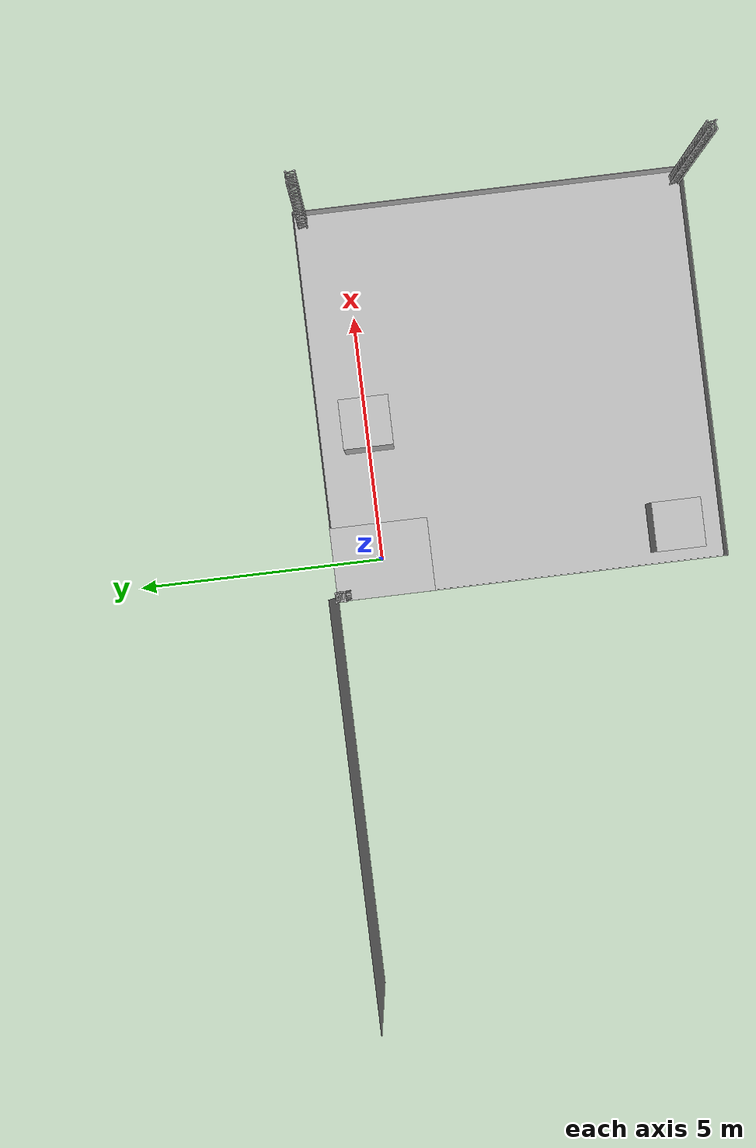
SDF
<?xml version="1.0" ?>
<sdf version="1.9">
  <world name="default">
    <plugin filename="gz-sim-physics-system" name="gz::sim::systems::Physics"/>
    <plugin filename="gz-sim-user-commands-system" name="gz::sim::systems::UserCommands"/>
    <plugin filename="gz-sim-scene-broadcaster-system" name="gz::sim::systems::SceneBroadcaster"/>
    <plugin filename="gz-sim-sensors-system" name="gz::sim::systems::Sensors">
      <render_engine>ogre2</render_engine>
    </plugin>

    <physics name="4ms" type="ignored">
      <max_step_size>0.004</max_step_size>
      <real_time_update_rate>250</real_time_update_rate>
    </physics>

    <scene>
      <ambient>1.0 1.0 1.0 1.0</ambient>
      <background>0.7 0.7 0.7 1.0</background>
      <shadows>false</shadows>
    </scene>

    <light type="directional" name="sun">
      <cast_shadows>false</cast_shadows> <pose>250 250 600 0 0 0</pose>
      <diffuse>0.8 0.8 0.8 1</diffuse>
      <specular>0.2 0.2 0.2 </specular>
      <direction>0 0 -1</direction>
    </light>

    <gui fullscreen="0">
      <camera name="user_camera">
        <pose>15 2 10 0 0.6 -2.64</pose>
      </camera>
    </gui>

    <model name="ground_plane">
      <static>true</static>
      <link name="link">
        <collision name="collision">
          <geometry>
            <plane>
              <normal>0 0 1</normal>
              <size>250 250</size>
            </plane>
          </geometry>
        </collision>
        <visual name="visual">
          <geometry>
            <plane>
              <normal>0 0 1</normal>
              <size>250 250</size>
            </plane>
          </geometry>
          <material>
            <ambient>0.3 0.5 0.3 1</ambient>
            <diffuse>0.3 0.5 0.3 1</diffuse>
          </material>
        </visual>
      </link>
    </model>

    <include>
      <name>arena</name>
      <uri>model://arena_spawn</uri>
      <pose>-0.75 -7.0 0.001 0 0 0</pose>
    </include>

    <include>
      <name>takeoff_platform</name>
      <uri>model://takeoff_platform</uri>
      <pose>0 0 0 0 0 0</pose>
    </include>

    <include>
      <name>banner</name>
      <uri>model://banner</uri>
      <pose>-0.75 -6.9 0 0 0 0</pose>
    </include>

    <include>
      <name>banner_2</name>
      <uri>model://banner_2</uri>
      <pose>-0.65 1.0 0.05 0 0 -1.57</pose>
    </include>

    <include>
      <name>landing_platform_A</name>
      <uri>model://suspended_landing_platform</uri>
      <pose>2.75 0.0 1.50 0 0 0</pose>
    </include>

    <include>
      <name>landing_platform_E</name>
      <uri>model://suspended_landing_platform</uri>
      <pose>0.0 -6.0 1.0 0 0 0</pose>
    </include>

  </world>
</sdf>

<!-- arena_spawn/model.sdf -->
<sdf version='1.6'>
  <model name='arena_spawn'>
    <link name='link_arena'>
      <inertial>
        <mass>15</mass>
        <inertia>
          <ixx>1</ixx>
          <ixy>1</ixy>
          <ixz>1</ixz>
          <iyy>1</iyy>
          <iyz>1</iyz>
          <izz>1</izz>
        </inertia>
      </inertial>
      <self_collide>1</self_collide>
      <enable_wind>0</enable_wind>
      <kinematic>0</kinematic>
      <pose frame=''>0 0 0 0 -0 0</pose>
      <visual name='visual'>
        <pose frame=''>0 0 0 0 -0 0</pose>
        <geometry>
          <mesh>
            <uri>model://arena_spawn/meshes/Arena.obj</uri>
            <scale>1 1 1</scale>
          </mesh>
        </geometry>
        <transparency>0</transparency>
        <cast_shadows>1</cast_shadows>
      </visual>
      <collision name='collision'>
        <laser_retro>0</laser_retro>
        <max_contacts>10</max_contacts>
        <pose frame=''>0 0 0 0 -0 0</pose>
        <geometry>
          <mesh>
            <uri>model://arena_spawn/meshes/Arena.obj</uri>
            <scale>1 1 1</scale>
          </mesh>
        </geometry>
        <surface>
          <friction>
            <ode>
              <mu>1</mu>
              <mu2>1</mu2>
              <fdir1>0 0 0</fdir1>
              <slip1>0</slip1>
              <slip2>0</slip2>
            </ode>
            <torsional>
              <coefficient>1</coefficient>
              <patch_radius>100</patch_radius>
              <surface_radius>100</surface_radius>
              <use_patch_radius>1</use_patch_radius>
              <ode>
                <slip>0</slip>
              </ode>
            </torsional>
          </friction>
          <bounce>
            <restitution_coefficient>0</restitution_coefficient>
            <threshold>1e+06</threshold>
          </bounce>
          <contact>
            <collide_without_contact>0</collide_without_contact>
            <collide_without_contact_bitmask>1</collide_without_contact_bitmask>
            <collide_bitmask>1</collide_bitmask>
            <ode>
              <soft_cfm>0</soft_cfm>
              <soft_erp>0.2</soft_erp>
              <kp>1e+13</kp>
              <kd>1</kd>
              <max_vel>0.01</max_vel>
              <min_depth>0</min_depth>
            </ode>
            <bullet>
              <split_impulse>1</split_impulse>
              <split_impulse_penetration_threshold>-0.01</split_impulse_penetration_threshold>
              <soft_cfm>0</soft_cfm>
              <soft_erp>0.2</soft_erp>
              <kp>1e+13</kp>
              <kd>1</kd>
            </bullet>
          </contact>
        </surface>
      </collision>
    </link>
    <link name='pilar_2'>
      <inertial>
        <mass>1</mass>
        <inertia>
          <ixx>0.166667</ixx>
          <ixy>0</ixy>
          <ixz>0</ixz>
          <iyy>0.166667</iyy>
          <iyz>0</iyz>
          <izz>0.166667</izz>
        </inertia>
      </inertial>
      <self_collide>1</self_collide>
      <enable_wind>0</enable_wind>
      <kinematic>0</kinematic>
      <pose frame=''>7.7 0 0 0 -0 0</pose>
      <visual name='visual'>
        <pose frame=''>0 0 0 0 -0 0</pose>
        <geometry>
          <mesh>
            <uri>model://arena_spawn/meshes/pilar.obj</uri>
            <scale>1 1 1</scale>
          </mesh>
        </geometry>
        <transparency>0</transparency>
        <cast_shadows>1</cast_shadows>
      </visual>
      <collision name='collision'>
        <laser_retro>0</laser_retro>
        <max_contacts>10</max_contacts>
        <pose frame=''>0 0 0 0 -0 0</pose>
        <geometry>
          <mesh>
            <uri>model://arena_spawn/meshes/pilar.obj</uri>
            <scale>1 1 1</scale>
          </mesh>
        </geometry>
        <surface>
          <friction>
            <ode>
              <mu>1</mu>
              <mu2>1</mu2>
              <fdir1>0 0 0</fdir1>
              <slip1>0</slip1>
              <slip2>0</slip2>
            </ode>
            <torsional>
              <coefficient>1</coefficient>
              <patch_radius>100</patch_radius>
              <surface_radius>100</surface_radius>
              <use_patch_radius>1</use_patch_radius>
              <ode>
                <slip>0</slip>
              </ode>
            </torsional>
          </friction>
          <bounce>
            <restitution_coefficient>0</restitution_coefficient>
            <threshold>1e+06</threshold>
          </bounce>
          <contact>
            <collide_without_contact>0</collide_without_contact>
            <collide_without_contact_bitmask>1</collide_without_contact_bitmask>
            <collide_bitmask>1</collide_bitmask>
            <ode>
              <soft_cfm>0</soft_cfm>
              <soft_erp>0.2</soft_erp>
              <kp>1e+13</kp>
              <kd>1</kd>
              <max_vel>0.01</max_vel>
              <min_depth>0</min_depth>
            </ode>
            <bullet>
              <split_impulse>1</split_impulse>
              <split_impulse_penetration_threshold>-0.01</split_impulse_penetration_threshold>
              <soft_cfm>0</soft_cfm>
              <soft_erp>0.2</soft_erp>
              <kp>1e+13</kp>
              <kd>1</kd>
            </bullet>
          </contact>
        </surface>
      </collision>
    </link>
    <link name='pilar_3'>
      <inertial>
        <mass>1</mass>
        <inertia>
          <ixx>0.166667</ixx>
          <ixy>0</ixy>
          <ixz>0</ixz>
          <iyy>0.166667</iyy>
          <iyz>0</iyz>
          <izz>0.166667</izz>
        </inertia>
      </inertial>
      <self_collide>1</self_collide>
      <enable_wind>0</enable_wind>
      <kinematic>0</kinematic>
      <pose frame=''>0 7.7 0 0 -0 0</pose>
      <visual name='visual'>
        <pose frame=''>0 0 0 0 -0 0</pose>
        <geometry>
          <mesh>
            <uri>model://arena_spawn/meshes/pilar.obj</uri>
            <scale>1 1 1</scale>
          </mesh>
        </geometry>
        <transparency>0</transparency>
        <cast_shadows>1</cast_shadows>
      </visual>
      <collision name='collision'>
        <laser_retro>0</laser_retro>
        <max_contacts>10</max_contacts>
        <pose frame=''>0 0 0 0 -0 0</pose>
        <geometry>
          <mesh>
            <uri>model://arena_spawn/meshes/pilar.obj</uri>
            <scale>1 1 1</scale>
          </mesh>
        </geometry>
        <surface>
          <friction>
            <ode>
              <mu>1</mu>
              <mu2>1</mu2>
              <fdir1>0 0 0</fdir1>
              <slip1>0</slip1>
              <slip2>0</slip2>
            </ode>
            <torsional>
              <coefficient>1</coefficient>
              <patch_radius>100</patch_radius>
              <surface_radius>100</surface_radius>
              <use_patch_radius>1</use_patch_radius>
              <ode>
                <slip>0</slip>
              </ode>
            </torsional>
          </friction>
          <bounce>
            <restitution_coefficient>0</restitution_coefficient>
            <threshold>1e+06</threshold>
          </bounce>
          <contact>
            <collide_without_contact>0</collide_without_contact>
            <collide_without_contact_bitmask>1</collide_without_contact_bitmask>
            <collide_bitmask>1</collide_bitmask>
            <ode>
              <soft_cfm>0</soft_cfm>
              <soft_erp>0.2</soft_erp>
              <kp>1e+13</kp>
              <kd>1</kd>
              <max_vel>0.01</max_vel>
              <min_depth>0</min_depth>
            </ode>
            <bullet>
              <split_impulse>1</split_impulse>
              <split_impulse_penetration_threshold>-0.01</split_impulse_penetration_threshold>
              <soft_cfm>0</soft_cfm>
              <soft_erp>0.2</soft_erp>
              <kp>1e+13</kp>
              <kd>1</kd>
            </bullet>
          </contact>
        </surface>
      </collision>
    </link>
    <link name='pilar_4'>
      <inertial>
        <mass>1</mass>
        <inertia>
          <ixx>0.166667</ixx>
          <ixy>0</ixy>
          <ixz>0</ixz>
          <iyy>0.166667</iyy>
          <iyz>0</iyz>
          <izz>0.166667</izz>
        </inertia>
      </inertial>
      <self_collide>1</self_collide>
      <enable_wind>0</enable_wind>
      <kinematic>0</kinematic>
      <pose frame=''>7.7 7.7 0 0 -0 0</pose>
      <visual name='visual'>
        <pose frame=''>0 0 0 0 -0 0</pose>
        <geometry>
          <mesh>
            <uri>model://arena_spawn/meshes/pilar.obj</uri>
            <scale>1 1 1</scale>
          </mesh>
        </geometry>
        <transparency>0</transparency>
        <cast_shadows>1</cast_shadows>
      </visual>
      <collision name='collision'>
        <laser_retro>0</laser_retro>
        <max_contacts>10</max_contacts>
        <pose frame=''>0 0 0 0 -0 0</pose>
        <geometry>
          <mesh>
            <uri>model://arena_spawn/meshes/pilar.obj</uri>
            <scale>1 1 1</scale>
          </mesh>
        </geometry>
        <surface>
          <friction>
            <ode>
              <mu>1</mu>
              <mu2>1</mu2>
              <fdir1>0 0 0</fdir1>
              <slip1>0</slip1>
              <slip2>0</slip2>
            </ode>
            <torsional>
              <coefficient>1</coefficient>
              <patch_radius>100</patch_radius>
              <surface_radius>100</surface_radius>
              <use_patch_radius>1</use_patch_radius>
              <ode>
                <slip>0</slip>
              </ode>
            </torsional>
          </friction>
          <bounce>
            <restitution_coefficient>0</restitution_coefficient>
            <threshold>1e+06</threshold>
          </bounce>
          <contact>
            <collide_without_contact>0</collide_without_contact>
            <collide_without_contact_bitmask>1</collide_without_contact_bitmask>
            <collide_bitmask>1</collide_bitmask>
            <ode>
              <soft_cfm>0</soft_cfm>
              <soft_erp>0.2</soft_erp>
              <kp>1e+13</kp>
              <kd>1</kd>
              <max_vel>0.01</max_vel>
              <min_depth>0</min_depth>
            </ode>
            <bullet>
              <split_impulse>1</split_impulse>
              <split_impulse_penetration_threshold>-0.01</split_impulse_penetration_threshold>
              <soft_cfm>0</soft_cfm>
              <soft_erp>0.2</soft_erp>
              <kp>1e+13</kp>
              <kd>1</kd>
            </bullet>
          </contact>
        </surface>
      </collision>
    </link>
    <static>1</static>
    <pose frame=''>0 0 0.0005 0 -0 0</pose>
  </model>
</sdf>

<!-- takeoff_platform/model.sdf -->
<sdf version='1.6'>
  <model name='takeoff_platform'>
    <link name='link_takeoff_platform'>
      <inertial>
        <mass>15</mass>
        <inertia>
          <ixx>1</ixx>
          <ixy>0</ixy>
          <ixz>0</ixz>
          <iyy>1</iyy>
          <iyz>0</iyz>
          <izz>1</izz>
        </inertia>
      </inertial>
      <self_collide>1</self_collide>
      <enable_wind>0</enable_wind>
      <kinematic>0</kinematic>
      <pose frame=''>0 0 0 0 -0 0</pose>
      <visual name='visual'>
        <pose frame=''>0 0 0 0 -0 0</pose>
        <geometry>
          <mesh>
            <uri>model://takeoff_platform/meshes/takeoff_platform.obj</uri>
            <scale>1 1 1</scale>
          </mesh>
        </geometry>
        <transparency>0</transparency>
        <cast_shadows>1</cast_shadows>
      </visual>
      <collision name='collision'>
        <laser_retro>0</laser_retro>
        <max_contacts>10</max_contacts>
        <pose frame=''>0 0 0 0 -0 0</pose>
        <geometry>
          <mesh>
            <uri>model://takeoff_platform/meshes/takeoff_platform.obj</uri>
            <scale>1 1 1</scale>
          </mesh>
        </geometry>
        <surface>
          <friction>
            <ode>
              <mu>1</mu>
              <mu2>1</mu2>
              <fdir1>0 0 0</fdir1>
              <slip1>0</slip1>
              <slip2>0</slip2>
            </ode>
            <torsional>
              <coefficient>1</coefficient>
              <patch_radius>100</patch_radius>
              <surface_radius>100</surface_radius>
              <use_patch_radius>1</use_patch_radius>
              <ode>
                <slip>0</slip>
              </ode>
            </torsional>
          </friction>
          <bounce>
            <restitution_coefficient>0</restitution_coefficient>
            <threshold>1e+06</threshold>
          </bounce>
          <contact>
            <collide_without_contact>0</collide_without_contact>
            <collide_without_contact_bitmask>1</collide_without_contact_bitmask>
            <collide_bitmask>1</collide_bitmask>
            <ode>
              <soft_cfm>0</soft_cfm>
              <soft_erp>0.2</soft_erp>
              <kp>1e+13</kp>
              <kd>1</kd>
              <max_vel>0.01</max_vel>
              <min_depth>0</min_depth>
            </ode>
            <bullet>
              <split_impulse>1</split_impulse>
              <split_impulse_penetration_threshold>-0.01</split_impulse_penetration_threshold>
              <soft_cfm>0</soft_cfm>
              <soft_erp>0.2</soft_erp>
              <kp>1e+13</kp>
              <kd>1</kd>
            </bullet>
          </contact>
        </surface>
      </collision>
    </link>
    <static>1</static>
    <pose frame=''>0 0 0.0005 0 -0 0</pose>
  </model>
</sdf>

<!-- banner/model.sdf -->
<sdf version='1.9'>
  <model name='banner'>
    <link name='link_0'>
      <inertial>
        <mass>1</mass>
        <inertia>
          <ixx>0.166667</ixx> <ixy>0</ixy> <ixz>0</ixz>
          <iyy>0.166667</iyy> <iyz>0</iyz> <izz>0.166667</izz>
        </inertia>
      </inertial>
      <pose>0 0 0 0 0 0</pose>
      <visual name='visual'>
        <geometry>
          <mesh>
            <uri>model://banner/meshes/banner.obj</uri>
            <scale>1.0 1.0 1.0</scale>
          </mesh>
        </geometry>
      </visual>
      <collision name='collision'>
        <geometry>
          <mesh>
            <uri>model://banner/meshes/banner.obj</uri>
            <scale>1.0 1.0 1.0</scale>
          </mesh>
        </geometry>
      </collision>
    </link>
    <static>true</static>
  </model>
</sdf>

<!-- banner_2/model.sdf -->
<sdf version='1.6'>
  <model name='banner_2'>
    <link name='link_0'>
      <inertial>
        <mass>1</mass>
        <inertia>
          <ixx>0.166667</ixx>
          <ixy>0</ixy>
          <ixz>0</ixz>
          <iyy>0.166667</iyy>
          <iyz>0</iyz>
          <izz>0.166667</izz>
        </inertia>
      </inertial>
      <pose>0 0 0 0 -0 0</pose>
      <visual name='visual'>
        <pose>0 0 0 0 -0 -1.57</pose>
        <geometry>
          <mesh>
            <uri>model://banner_2/meshes/banner.obj</uri>
            <scale>1.0 1.0 1.0</scale>
          </mesh>
        </geometry>
        <transparency>0</transparency>
        <cast_shadows>1</cast_shadows>
      </visual>
      <collision name='collision'>
        <laser_retro>0</laser_retro>
        <max_contacts>10</max_contacts>
        <pose>0 0 0 0 -0 -1.57</pose>
        <geometry>
          <mesh>
            <uri>model://banner_2/meshes/banner.obj</uri>
            <scale>1.0 1.0 1.0</scale>
          </mesh>
        </geometry>
      </collision>
    </link>
    <static>1</static>
    <allow_auto_disable>1</allow_auto_disable>
  </model>
</sdf>

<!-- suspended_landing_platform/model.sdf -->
<sdf version='1.6'>
  <model name='suspended_landing_platform'>
    <link name='link_suspended_landing_platform'>
      <inertial>
        <mass>1</mass>
        <inertia>
          <ixx>0.166667</ixx>
          <ixy>0</ixy>
          <ixz>0</ixz>
          <iyy>0.166667</iyy>
          <iyz>0</iyz>
          <izz>0.166667</izz>
        </inertia>
        <pose>0 0 0 0 -0 0</pose>
      </inertial>
      <self_collide>0</self_collide>
      <enable_wind>0</enable_wind>
      <kinematic>0</kinematic>
      <pose>0 0 0 0 -0 0</pose>
      <gravity>1</gravity>
      <visual name='visual'>
        <pose frame=''>0 0 0 0 -0 0</pose>
        <geometry>
          <mesh>
            <uri>model://suspended_landing_platform/meshes/suspended_landing_platform.obj</uri>
            <scale>1 1 1</scale>
          </mesh>
        </geometry>
        <transparency>0</transparency>
        <cast_shadows>1</cast_shadows>
      </visual>
      <collision name='collision'>
        <laser_retro>0</laser_retro>
        <max_contacts>10</max_contacts>
        <pose>0 0 -0.75 0 -0 0</pose>
        <geometry>
          <box>
            <size>1 1 1.5</size>
          </box>
        </geometry>
        <surface>
          <friction>
            <ode>
              <mu>100</mu>
              <mu2>100</mu2>
              <fdir1>0 0 0</fdir1>
              <slip1>0</slip1>
              <slip2>0</slip2>
            </ode>
            <torsional>
              <coefficient>1</coefficient>
              <patch_radius>1</patch_radius>
              <surface_radius>1</surface_radius>
              <use_patch_radius>1</use_patch_radius>
              <ode>
                <slip>0</slip>
              </ode>
            </torsional>
          </friction>
          <bounce>
            <restitution_coefficient>1</restitution_coefficient>
            <threshold>1e+06</threshold>
          </bounce>
          <contact>
            <collide_without_contact>0</collide_without_contact>
            <collide_without_contact_bitmask>1</collide_without_contact_bitmask>
            <collide_bitmask>1</collide_bitmask>
            <ode>
              <soft_cfm>0</soft_cfm>
              <soft_erp>0.2</soft_erp>
              <kp>1e+13</kp>
              <kd>1</kd>
              <max_vel>0.01</max_vel>
              <min_depth>0</min_depth>
            </ode>
            <bullet>
              <split_impulse>1</split_impulse>
              <split_impulse_penetration_threshold>-0.01</split_impulse_penetration_threshold>
              <soft_cfm>0</soft_cfm>
              <soft_erp>0.2</soft_erp>
              <kp>1e+13</kp>
              <kd>1</kd>
            </bullet>
          </contact>
        </surface>
      </collision>
    </link>
    <static>1</static>
    <allow_auto_disable>1</allow_auto_disable>
  </model>
</sdf>
